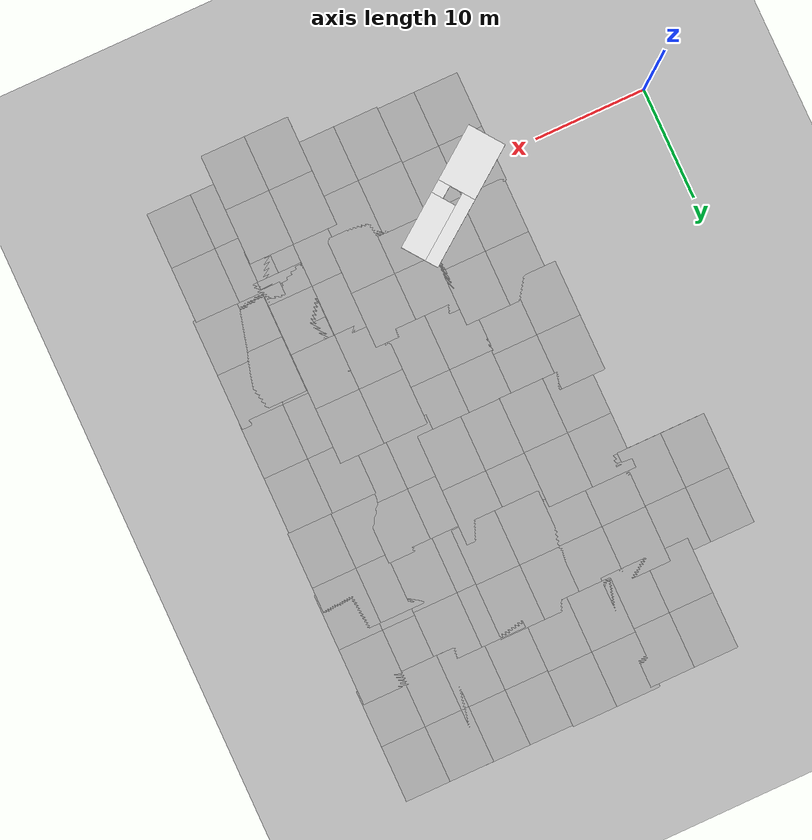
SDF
<sdf version="1.5">
 <world name="default">
  <model name="ground_plane">
   <static>1</static>
   <link name="link">
    <collision name="collision">
     <geometry><plane><normal>0 0 1</normal><size>100 100</size></plane></geometry>
     <surface><friction><ode><mu>100</mu><mu2>50</mu2></ode></friction></surface>
    </collision>
    <visual name="visual">
     <cast_shadows>0</cast_shadows>
     <geometry><plane><normal>0 0 1</normal><size>100 100</size></plane></geometry>
     <material>
      <script><uri>file://media/materials/scripts/gazebo.material</uri><name>Gazebo/Grey</name></script>
     </material>
    </visual>
   </link>
  </model>
  <model name="mud_box_20">
   <static>1</static>
   <link name="link">
    <collision name="collision"><geometry><box><size>8 10 0.2</size></box></geometry></collision>
    <visual name="visual_1">
     <pose>-2 2.5 0 0 -0 0</pose>
     <cast_shadows>0</cast_shadows>
     <geometry><box><size>4 5 0.2</size></box></geometry>
     <material>
      <script>
       <uri>model://mud_box/materials/scripts</uri>
       <uri>model://mud_box/materials/textures</uri>
       <name>vrc/mud</name>
      </script>
     </material>
    </visual>
    <visual name="visual_2">
     <pose>2 2.5 0 0 -0 0</pose>
     <cast_shadows>0</cast_shadows>
     <geometry><box><size>4 5 0.2</size></box></geometry>
     <material>
      <script>
       <uri>model://mud_box/materials/scripts</uri>
       <uri>model://mud_box/materials/textures</uri>
       <name>vrc/mud</name>
      </script>
     </material>
    </visual>
    <visual name="visual_3">
     <pose>2 -2.5 0 0 -0 0</pose>
     <cast_shadows>0</cast_shadows>
     <geometry><box><size>4 5 0.2</size></box></geometry>
     <material>
      <script>
       <uri>model://mud_box/materials/scripts</uri>
       <uri>model://mud_box/materials/textures</uri>
       <name>vrc/mud</name>
      </script>
     </material>
    </visual>
    <visual name="visual_4">
     <pose>-2 -2.5 0 0 -0 0</pose>
     <cast_shadows>0</cast_shadows>
     <geometry><box><size>4 5 0.2</size></box></geometry>
     <material>
      <script>
       <uri>model://mud_box/materials/scripts</uri>
       <uri>model://mud_box/materials/textures</uri>
       <name>vrc/mud</name>
      </script>
     </material>
    </visual>
   </link>
   <pose>17.6784 -2.87806 0 0 -0 0</pose>
  </model>
  <model name="mud_box_21">
   <static>1</static>
   <link name="link">
    <collision name="collision"><geometry><box><size>8 10 0.2</size></box></geometry></collision>
    <visual name="visual_1">
     <pose>-2 2.5 0 0 -0 0</pose>
     <cast_shadows>0</cast_shadows>
     <geometry><box><size>4 5 0.2</size></box></geometry>
     <material>
      <script>
       <uri>model://mud_box/materials/scripts</uri>
       <uri>model://mud_box/materials/textures</uri>
       <name>vrc/mud</name>
      </script>
     </material>
    </visual>
    <visual name="visual_2">
     <pose>2 2.5 0 0 -0 0</pose>
     <cast_shadows>0</cast_shadows>
     <geometry><box><size>4 5 0.2</size></box></geometry>
     <material>
      <script>
       <uri>model://mud_box/materials/scripts</uri>
       <uri>model://mud_box/materials/textures</uri>
       <name>vrc/mud</name>
      </script>
     </material>
    </visual>
    <visual name="visual_3">
     <pose>2 -2.5 0 0 -0 0</pose>
     <cast_shadows>0</cast_shadows>
     <geometry><box><size>4 5 0.2</size></box></geometry>
     <material>
      <script>
       <uri>model://mud_box/materials/scripts</uri>
       <uri>model://mud_box/materials/textures</uri>
       <name>vrc/mud</name>
      </script>
     </material>
    </visual>
    <visual name="visual_4">
     <pose>-2 -2.5 0 0 -0 0</pose>
     <cast_shadows>0</cast_shadows>
     <geometry><box><size>4 5 0.2</size></box></geometry>
     <material>
      <script>
       <uri>model://mud_box/materials/scripts</uri>
       <uri>model://mud_box/materials/textures</uri>
       <name>vrc/mud</name>
      </script>
     </material>
    </visual>
   </link>
   <pose>17.8105 6.82073 0 0 -0 0</pose>
  </model>
  <model name="mud_box_22">
   <static>1</static>
   <link name="link">
    <collision name="collision"><geometry><box><size>8 10 0.2</size></box></geometry></collision>
    <visual name="visual_1">
     <pose>-2 2.5 0 0 -0 0</pose>
     <cast_shadows>0</cast_shadows>
     <geometry><box><size>4 5 0.2</size></box></geometry>
     <material>
      <script>
       <uri>model://mud_box/materials/scripts</uri>
       <uri>model://mud_box/materials/textures</uri>
       <name>vrc/mud</name>
      </script>
     </material>
    </visual>
    <visual name="visual_2">
     <pose>2 2.5 0 0 -0 0</pose>
     <cast_shadows>0</cast_shadows>
     <geometry><box><size>4 5 0.2</size></box></geometry>
     <material>
      <script>
       <uri>model://mud_box/materials/scripts</uri>
       <uri>model://mud_box/materials/textures</uri>
       <name>vrc/mud</name>
      </script>
     </material>
    </visual>
    <visual name="visual_3">
     <pose>2 -2.5 0 0 -0 0</pose>
     <cast_shadows>0</cast_shadows>
     <geometry><box><size>4 5 0.2</size></box></geometry>
     <material>
      <script>
       <uri>model://mud_box/materials/scripts</uri>
       <uri>model://mud_box/materials/textures</uri>
       <name>vrc/mud</name>
      </script>
     </material>
    </visual>
    <visual name="visual_4">
     <pose>-2 -2.5 0 0 -0 0</pose>
     <cast_shadows>0</cast_shadows>
     <geometry><box><size>4 5 0.2</size></box></geometry>
     <material>
      <script>
       <uri>model://mud_box/materials/scripts</uri>
       <uri>model://mud_box/materials/textures</uri>
       <name>vrc/mud</name>
      </script>
     </material>
    </visual>
   </link>
   <pose>16.8214 15.0075 0 0 -0 0</pose>
  </model>
  <model name="mud_box_28">
   <static>1</static>
   <link name="link">
    <collision name="collision"><geometry><box><size>8 10 0.2</size></box></geometry></collision>
    <visual name="visual_1">
     <pose>-2 2.5 0 0 -0 0</pose>
     <cast_shadows>0</cast_shadows>
     <geometry><box><size>4 5 0.2</size></box></geometry>
     <material>
      <script>
       <uri>model://mud_box/materials/scripts</uri>
       <uri>model://mud_box/materials/textures</uri>
       <name>vrc/mud</name>
      </script>
     </material>
    </visual>
    <visual name="visual_2">
     <pose>2 2.5 0 0 -0 0</pose>
     <cast_shadows>0</cast_shadows>
     <geometry><box><size>4 5 0.2</size></box></geometry>
     <material>
      <script>
       <uri>model://mud_box/materials/scripts</uri>
       <uri>model://mud_box/materials/textures</uri>
       <name>vrc/mud</name>
      </script>
     </material>
    </visual>
    <visual name="visual_3">
     <pose>2 -2.5 0 0 -0 0</pose>
     <cast_shadows>0</cast_shadows>
     <geometry><box><size>4 5 0.2</size></box></geometry>
     <material>
      <script>
       <uri>model://mud_box/materials/scripts</uri>
       <uri>model://mud_box/materials/textures</uri>
       <name>vrc/mud</name>
      </script>
     </material>
    </visual>
    <visual name="visual_4">
     <pose>-2 -2.5 0 0 -0 0</pose>
     <cast_shadows>0</cast_shadows>
     <geometry><box><size>4 5 0.2</size></box></geometry>
     <material>
      <script>
       <uri>model://mud_box/materials/scripts</uri>
       <uri>model://mud_box/materials/textures</uri>
       <name>vrc/mud</name>
      </script>
     </material>
    </visual>
   </link>
   <pose>17.9076 23.5387 0 0 -0 0</pose>
  </model>
  <model name="mud_box_29">
   <static>1</static>
   <link name="link">
    <collision name="collision"><geometry><box><size>8 10 0.2</size></box></geometry></collision>
    <visual name="visual_1">
     <pose>-2 2.5 0 0 -0 0</pose>
     <cast_shadows>0</cast_shadows>
     <geometry><box><size>4 5 0.2</size></box></geometry>
     <material>
      <script>
       <uri>model://mud_box/materials/scripts</uri>
       <uri>model://mud_box/materials/textures</uri>
       <name>vrc/mud</name>
      </script>
     </material>
    </visual>
    <visual name="visual_2">
     <pose>2 2.5 0 0 -0 0</pose>
     <cast_shadows>0</cast_shadows>
     <geometry><box><size>4 5 0.2</size></box></geometry>
     <material>
      <script>
       <uri>model://mud_box/materials/scripts</uri>
       <uri>model://mud_box/materials/textures</uri>
       <name>vrc/mud</name>
      </script>
     </material>
    </visual>
    <visual name="visual_3">
     <pose>2 -2.5 0 0 -0 0</pose>
     <cast_shadows>0</cast_shadows>
     <geometry><box><size>4 5 0.2</size></box></geometry>
     <material>
      <script>
       <uri>model://mud_box/materials/scripts</uri>
       <uri>model://mud_box/materials/textures</uri>
       <name>vrc/mud</name>
      </script>
     </material>
    </visual>
    <visual name="visual_4">
     <pose>-2 -2.5 0 0 -0 0</pose>
     <cast_shadows>0</cast_shadows>
     <geometry><box><size>4 5 0.2</size></box></geometry>
     <material>
      <script>
       <uri>model://mud_box/materials/scripts</uri>
       <uri>model://mud_box/materials/textures</uri>
       <name>vrc/mud</name>
      </script>
     </material>
    </visual>
   </link>
   <pose>25.4664 23.5733 0 0 -0 0</pose>
  </model>
  <model name="mud_box_30">
   <static>1</static>
   <link name="link">
    <collision name="collision"><geometry><box><size>8 10 0.2</size></box></geometry></collision>
    <visual name="visual_1">
     <pose>-2 2.5 0 0 -0 0</pose>
     <cast_shadows>0</cast_shadows>
     <geometry><box><size>4 5 0.2</size></box></geometry>
     <material>
      <script>
       <uri>model://mud_box/materials/scripts</uri>
       <uri>model://mud_box/materials/textures</uri>
       <name>vrc/mud</name>
      </script>
     </material>
    </visual>
    <visual name="visual_2">
     <pose>2 2.5 0 0 -0 0</pose>
     <cast_shadows>0</cast_shadows>
     <geometry><box><size>4 5 0.2</size></box></geometry>
     <material>
      <script>
       <uri>model://mud_box/materials/scripts</uri>
       <uri>model://mud_box/materials/textures</uri>
       <name>vrc/mud</name>
      </script>
     </material>
    </visual>
    <visual name="visual_3">
     <pose>2 -2.5 0 0 -0 0</pose>
     <cast_shadows>0</cast_shadows>
     <geometry><box><size>4 5 0.2</size></box></geometry>
     <material>
      <script>
       <uri>model://mud_box/materials/scripts</uri>
       <uri>model://mud_box/materials/textures</uri>
       <name>vrc/mud</name>
      </script>
     </material>
    </visual>
    <visual name="visual_4">
     <pose>-2 -2.5 0 0 -0 0</pose>
     <cast_shadows>0</cast_shadows>
     <geometry><box><size>4 5 0.2</size></box></geometry>
     <material>
      <script>
       <uri>model://mud_box/materials/scripts</uri>
       <uri>model://mud_box/materials/textures</uri>
       <name>vrc/mud</name>
      </script>
     </material>
    </visual>
   </link>
   <pose>24.6825 14.6232 0 0 -0 0</pose>
  </model>
  <model name="mud_box_31">
   <static>1</static>
   <link name="link">
    <collision name="collision"><geometry><box><size>8 10 0.2</size></box></geometry></collision>
    <visual name="visual_1">
     <pose>-2 2.5 0 0 -0 0</pose>
     <cast_shadows>0</cast_shadows>
     <geometry><box><size>4 5 0.2</size></box></geometry>
     <material>
      <script>
       <uri>model://mud_box/materials/scripts</uri>
       <uri>model://mud_box/materials/textures</uri>
       <name>vrc/mud</name>
      </script>
     </material>
    </visual>
    <visual name="visual_2">
     <pose>2 2.5 0 0 -0 0</pose>
     <cast_shadows>0</cast_shadows>
     <geometry><box><size>4 5 0.2</size></box></geometry>
     <material>
      <script>
       <uri>model://mud_box/materials/scripts</uri>
       <uri>model://mud_box/materials/textures</uri>
       <name>vrc/mud</name>
      </script>
     </material>
    </visual>
    <visual name="visual_3">
     <pose>2 -2.5 0 0 -0 0</pose>
     <cast_shadows>0</cast_shadows>
     <geometry><box><size>4 5 0.2</size></box></geometry>
     <material>
      <script>
       <uri>model://mud_box/materials/scripts</uri>
       <uri>model://mud_box/materials/textures</uri>
       <name>vrc/mud</name>
      </script>
     </material>
    </visual>
    <visual name="visual_4">
     <pose>-2 -2.5 0 0 -0 0</pose>
     <cast_shadows>0</cast_shadows>
     <geometry><box><size>4 5 0.2</size></box></geometry>
     <material>
      <script>
       <uri>model://mud_box/materials/scripts</uri>
       <uri>model://mud_box/materials/textures</uri>
       <name>vrc/mud</name>
      </script>
     </material>
    </visual>
   </link>
   <pose>25.5048 5.37168 0 0 -0 0</pose>
  </model>
  <model name="mud_box_32">
   <static>1</static>
   <link name="link">
    <collision name="collision"><geometry><box><size>8 10 0.2</size></box></geometry></collision>
    <visual name="visual_1">
     <pose>-2 2.5 0 0 -0 0</pose>
     <cast_shadows>0</cast_shadows>
     <geometry><box><size>4 5 0.2</size></box></geometry>
     <material>
      <script>
       <uri>model://mud_box/materials/scripts</uri>
       <uri>model://mud_box/materials/textures</uri>
       <name>vrc/mud</name>
      </script>
     </material>
    </visual>
    <visual name="visual_2">
     <pose>2 2.5 0 0 -0 0</pose>
     <cast_shadows>0</cast_shadows>
     <geometry><box><size>4 5 0.2</size></box></geometry>
     <material>
      <script>
       <uri>model://mud_box/materials/scripts</uri>
       <uri>model://mud_box/materials/textures</uri>
       <name>vrc/mud</name>
      </script>
     </material>
    </visual>
    <visual name="visual_3">
     <pose>2 -2.5 0 0 -0 0</pose>
     <cast_shadows>0</cast_shadows>
     <geometry><box><size>4 5 0.2</size></box></geometry>
     <material>
      <script>
       <uri>model://mud_box/materials/scripts</uri>
       <uri>model://mud_box/materials/textures</uri>
       <name>vrc/mud</name>
      </script>
     </material>
    </visual>
    <visual name="visual_4">
     <pose>-2 -2.5 0 0 -0 0</pose>
     <cast_shadows>0</cast_shadows>
     <geometry><box><size>4 5 0.2</size></box></geometry>
     <material>
      <script>
       <uri>model://mud_box/materials/scripts</uri>
       <uri>model://mud_box/materials/textures</uri>
       <name>vrc/mud</name>
      </script>
     </material>
    </visual>
   </link>
   <pose>25.024 -3.03907 0 0 -0 0</pose>
  </model>
  <model name="mud_box_60">
   <static>1</static>
   <link name="link">
    <collision name="collision"><geometry><box><size>8 10 0.2</size></box></geometry></collision>
    <visual name="visual_1">
     <pose>-2 2.5 0 0 -0 0</pose>
     <cast_shadows>0</cast_shadows>
     <geometry><box><size>4 5 0.2</size></box></geometry>
     <material>
      <script>
       <uri>model://mud_box/materials/scripts</uri>
       <uri>model://mud_box/materials/textures</uri>
       <name>vrc/mud</name>
      </script>
     </material>
    </visual>
    <visual name="visual_2">
     <pose>2 2.5 0 0 -0 0</pose>
     <cast_shadows>0</cast_shadows>
     <geometry><box><size>4 5 0.2</size></box></geometry>
     <material>
      <script>
       <uri>model://mud_box/materials/scripts</uri>
       <uri>model://mud_box/materials/textures</uri>
       <name>vrc/mud</name>
      </script>
     </material>
    </visual>
    <visual name="visual_3">
     <pose>2 -2.5 0 0 -0 0</pose>
     <cast_shadows>0</cast_shadows>
     <geometry><box><size>4 5 0.2</size></box></geometry>
     <material>
      <script>
       <uri>model://mud_box/materials/scripts</uri>
       <uri>model://mud_box/materials/textures</uri>
       <name>vrc/mud</name>
      </script>
     </material>
    </visual>
    <visual name="visual_4">
     <pose>-2 -2.5 0 0 -0 0</pose>
     <cast_shadows>0</cast_shadows>
     <geometry><box><size>4 5 0.2</size></box></geometry>
     <material>
      <script>
       <uri>model://mud_box/materials/scripts</uri>
       <uri>model://mud_box/materials/textures</uri>
       <name>vrc/mud</name>
      </script>
     </material>
    </visual>
   </link>
   <pose>10.8531 31.8079 0 0 -0 0</pose>
  </model>
  <model name="mud_box_61">
   <static>1</static>
   <link name="link">
    <collision name="collision"><geometry><box><size>8 10 0.2</size></box></geometry></collision>
    <visual name="visual_1">
     <pose>-2 2.5 0 0 -0 0</pose>
     <cast_shadows>0</cast_shadows>
     <geometry><box><size>4 5 0.2</size></box></geometry>
     <material>
      <script>
       <uri>model://mud_box/materials/scripts</uri>
       <uri>model://mud_box/materials/textures</uri>
       <name>vrc/mud</name>
      </script>
     </material>
    </visual>
    <visual name="visual_2">
     <pose>2 2.5 0 0 -0 0</pose>
     <cast_shadows>0</cast_shadows>
     <geometry><box><size>4 5 0.2</size></box></geometry>
     <material>
      <script>
       <uri>model://mud_box/materials/scripts</uri>
       <uri>model://mud_box/materials/textures</uri>
       <name>vrc/mud</name>
      </script>
     </material>
    </visual>
    <visual name="visual_3">
     <pose>2 -2.5 0 0 -0 0</pose>
     <cast_shadows>0</cast_shadows>
     <geometry><box><size>4 5 0.2</size></box></geometry>
     <material>
      <script>
       <uri>model://mud_box/materials/scripts</uri>
       <uri>model://mud_box/materials/textures</uri>
       <name>vrc/mud</name>
      </script>
     </material>
    </visual>
    <visual name="visual_4">
     <pose>-2 -2.5 0 0 -0 0</pose>
     <cast_shadows>0</cast_shadows>
     <geometry><box><size>4 5 0.2</size></box></geometry>
     <material>
      <script>
       <uri>model://mud_box/materials/scripts</uri>
       <uri>model://mud_box/materials/textures</uri>
       <name>vrc/mud</name>
      </script>
     </material>
    </visual>
   </link>
   <pose>18.5742 31.8561 0 0 -0 0</pose>
  </model>
  <model name="mud_box_62">
   <static>1</static>
   <link name="link">
    <collision name="collision"><geometry><box><size>8 10 0.2</size></box></geometry></collision>
    <visual name="visual_1">
     <pose>-2 2.5 0 0 -0 0</pose>
     <cast_shadows>0</cast_shadows>
     <geometry><box><size>4 5 0.2</size></box></geometry>
     <material>
      <script>
       <uri>model://mud_box/materials/scripts</uri>
       <uri>model://mud_box/materials/textures</uri>
       <name>vrc/mud</name>
      </script>
     </material>
    </visual>
    <visual name="visual_2">
     <pose>2 2.5 0 0 -0 0</pose>
     <cast_shadows>0</cast_shadows>
     <geometry><box><size>4 5 0.2</size></box></geometry>
     <material>
      <script>
       <uri>model://mud_box/materials/scripts</uri>
       <uri>model://mud_box/materials/textures</uri>
       <name>vrc/mud</name>
      </script>
     </material>
    </visual>
    <visual name="visual_3">
     <pose>2 -2.5 0 0 -0 0</pose>
     <cast_shadows>0</cast_shadows>
     <geometry><box><size>4 5 0.2</size></box></geometry>
     <material>
      <script>
       <uri>model://mud_box/materials/scripts</uri>
       <uri>model://mud_box/materials/textures</uri>
       <name>vrc/mud</name>
      </script>
     </material>
    </visual>
    <visual name="visual_4">
     <pose>-2 -2.5 0 0 -0 0</pose>
     <cast_shadows>0</cast_shadows>
     <geometry><box><size>4 5 0.2</size></box></geometry>
     <material>
      <script>
       <uri>model://mud_box/materials/scripts</uri>
       <uri>model://mud_box/materials/textures</uri>
       <name>vrc/mud</name>
      </script>
     </material>
    </visual>
   </link>
   <pose>26.1645 31.9077 0 0 -0 0</pose>
  </model>
  <model name="mud_box_63">
   <static>1</static>
   <link name="link">
    <collision name="collision"><geometry><box><size>8 10 0.2</size></box></geometry></collision>
    <visual name="visual_1">
     <pose>-2 2.5 0 0 -0 0</pose>
     <cast_shadows>0</cast_shadows>
     <geometry><box><size>4 5 0.2</size></box></geometry>
     <material>
      <script>
       <uri>model://mud_box/materials/scripts</uri>
       <uri>model://mud_box/materials/textures</uri>
       <name>vrc/mud</name>
      </script>
     </material>
    </visual>
    <visual name="visual_2">
     <pose>2 2.5 0 0 -0 0</pose>
     <cast_shadows>0</cast_shadows>
     <geometry><box><size>4 5 0.2</size></box></geometry>
     <material>
      <script>
       <uri>model://mud_box/materials/scripts</uri>
       <uri>model://mud_box/materials/textures</uri>
       <name>vrc/mud</name>
      </script>
     </material>
    </visual>
    <visual name="visual_3">
     <pose>2 -2.5 0 0 -0 0</pose>
     <cast_shadows>0</cast_shadows>
     <geometry><box><size>4 5 0.2</size></box></geometry>
     <material>
      <script>
       <uri>model://mud_box/materials/scripts</uri>
       <uri>model://mud_box/materials/textures</uri>
       <name>vrc/mud</name>
      </script>
     </material>
    </visual>
    <visual name="visual_4">
     <pose>-2 -2.5 0 0 -0 0</pose>
     <cast_shadows>0</cast_shadows>
     <geometry><box><size>4 5 0.2</size></box></geometry>
     <material>
      <script>
       <uri>model://mud_box/materials/scripts</uri>
       <uri>model://mud_box/materials/textures</uri>
       <name>vrc/mud</name>
      </script>
     </material>
    </visual>
   </link>
   <pose>31.8855 31.8213 0 0 -0 0</pose>
  </model>
  <model name="mud_box_64">
   <static>1</static>
   <link name="link">
    <collision name="collision"><geometry><box><size>8 10 0.2</size></box></geometry></collision>
    <visual name="visual_1">
     <pose>-2 2.5 0 0 -0 0</pose>
     <cast_shadows>0</cast_shadows>
     <geometry><box><size>4 5 0.2</size></box></geometry>
     <material>
      <script>
       <uri>model://mud_box/materials/scripts</uri>
       <uri>model://mud_box/materials/textures</uri>
       <name>vrc/mud</name>
      </script>
     </material>
    </visual>
    <visual name="visual_2">
     <pose>2 2.5 0 0 -0 0</pose>
     <cast_shadows>0</cast_shadows>
     <geometry><box><size>4 5 0.2</size></box></geometry>
     <material>
      <script>
       <uri>model://mud_box/materials/scripts</uri>
       <uri>model://mud_box/materials/textures</uri>
       <name>vrc/mud</name>
      </script>
     </material>
    </visual>
    <visual name="visual_3">
     <pose>2 -2.5 0 0 -0 0</pose>
     <cast_shadows>0</cast_shadows>
     <geometry><box><size>4 5 0.2</size></box></geometry>
     <material>
      <script>
       <uri>model://mud_box/materials/scripts</uri>
       <uri>model://mud_box/materials/textures</uri>
       <name>vrc/mud</name>
      </script>
     </material>
    </visual>
    <visual name="visual_4">
     <pose>-2 -2.5 0 0 -0 0</pose>
     <cast_shadows>0</cast_shadows>
     <geometry><box><size>4 5 0.2</size></box></geometry>
     <material>
      <script>
       <uri>model://mud_box/materials/scripts</uri>
       <uri>model://mud_box/materials/textures</uri>
       <name>vrc/mud</name>
      </script>
     </material>
    </visual>
   </link>
   <pose>32.0376 22.235 0 0 -0 0</pose>
  </model>
  <model name="mud_box_65">
   <static>1</static>
   <link name="link">
    <collision name="collision"><geometry><box><size>8 10 0.2</size></box></geometry></collision>
    <visual name="visual_1">
     <pose>-2 2.5 0 0 -0 0</pose>
     <cast_shadows>0</cast_shadows>
     <geometry><box><size>4 5 0.2</size></box></geometry>
     <material>
      <script>
       <uri>model://mud_box/materials/scripts</uri>
       <uri>model://mud_box/materials/textures</uri>
       <name>vrc/mud</name>
      </script>
     </material>
    </visual>
    <visual name="visual_2">
     <pose>2 2.5 0 0 -0 0</pose>
     <cast_shadows>0</cast_shadows>
     <geometry><box><size>4 5 0.2</size></box></geometry>
     <material>
      <script>
       <uri>model://mud_box/materials/scripts</uri>
       <uri>model://mud_box/materials/textures</uri>
       <name>vrc/mud</name>
      </script>
     </material>
    </visual>
    <visual name="visual_3">
     <pose>2 -2.5 0 0 -0 0</pose>
     <cast_shadows>0</cast_shadows>
     <geometry><box><size>4 5 0.2</size></box></geometry>
     <material>
      <script>
       <uri>model://mud_box/materials/scripts</uri>
       <uri>model://mud_box/materials/textures</uri>
       <name>vrc/mud</name>
      </script>
     </material>
    </visual>
    <visual name="visual_4">
     <pose>-2 -2.5 0 0 -0 0</pose>
     <cast_shadows>0</cast_shadows>
     <geometry><box><size>4 5 0.2</size></box></geometry>
     <material>
      <script>
       <uri>model://mud_box/materials/scripts</uri>
       <uri>model://mud_box/materials/textures</uri>
       <name>vrc/mud</name>
      </script>
     </material>
    </visual>
   </link>
   <pose>32.2409 12.9553 0 0 -0 0</pose>
  </model>
  <model name="mud_box_66">
   <static>1</static>
   <link name="link">
    <collision name="collision"><geometry><box><size>8 10 0.2</size></box></geometry></collision>
    <visual name="visual_1">
     <pose>-2 2.5 0 0 -0 0</pose>
     <cast_shadows>0</cast_shadows>
     <geometry><box><size>4 5 0.2</size></box></geometry>
     <material>
      <script>
       <uri>model://mud_box/materials/scripts</uri>
       <uri>model://mud_box/materials/textures</uri>
       <name>vrc/mud</name>
      </script>
     </material>
    </visual>
    <visual name="visual_2">
     <pose>2 2.5 0 0 -0 0</pose>
     <cast_shadows>0</cast_shadows>
     <geometry><box><size>4 5 0.2</size></box></geometry>
     <material>
      <script>
       <uri>model://mud_box/materials/scripts</uri>
       <uri>model://mud_box/materials/textures</uri>
       <name>vrc/mud</name>
      </script>
     </material>
    </visual>
    <visual name="visual_3">
     <pose>2 -2.5 0 0 -0 0</pose>
     <cast_shadows>0</cast_shadows>
     <geometry><box><size>4 5 0.2</size></box></geometry>
     <material>
      <script>
       <uri>model://mud_box/materials/scripts</uri>
       <uri>model://mud_box/materials/textures</uri>
       <name>vrc/mud</name>
      </script>
     </material>
    </visual>
    <visual name="visual_4">
     <pose>-2 -2.5 0 0 -0 0</pose>
     <cast_shadows>0</cast_shadows>
     <geometry><box><size>4 5 0.2</size></box></geometry>
     <material>
      <script>
       <uri>model://mud_box/materials/scripts</uri>
       <uri>model://mud_box/materials/textures</uri>
       <name>vrc/mud</name>
      </script>
     </material>
    </visual>
   </link>
   <pose>32.2475 3.439 0 0 -0 0</pose>
  </model>
  <model name="mud_box_67">
   <static>1</static>
   <link name="link">
    <collision name="collision"><geometry><box><size>8 10 0.2</size></box></geometry></collision>
    <visual name="visual_1">
     <pose>-2 2.5 0 0 -0 0</pose>
     <cast_shadows>0</cast_shadows>
     <geometry><box><size>4 5 0.2</size></box></geometry>
     <material>
      <script>
       <uri>model://mud_box/materials/scripts</uri>
       <uri>model://mud_box/materials/textures</uri>
       <name>vrc/mud</name>
      </script>
     </material>
    </visual>
    <visual name="visual_2">
     <pose>2 2.5 0 0 -0 0</pose>
     <cast_shadows>0</cast_shadows>
     <geometry><box><size>4 5 0.2</size></box></geometry>
     <material>
      <script>
       <uri>model://mud_box/materials/scripts</uri>
       <uri>model://mud_box/materials/textures</uri>
       <name>vrc/mud</name>
      </script>
     </material>
    </visual>
    <visual name="visual_3">
     <pose>2 -2.5 0 0 -0 0</pose>
     <cast_shadows>0</cast_shadows>
     <geometry><box><size>4 5 0.2</size></box></geometry>
     <material>
      <script>
       <uri>model://mud_box/materials/scripts</uri>
       <uri>model://mud_box/materials/textures</uri>
       <name>vrc/mud</name>
      </script>
     </material>
    </visual>
    <visual name="visual_4">
     <pose>-2 -2.5 0 0 -0 0</pose>
     <cast_shadows>0</cast_shadows>
     <geometry><box><size>4 5 0.2</size></box></geometry>
     <material>
      <script>
       <uri>model://mud_box/materials/scripts</uri>
       <uri>model://mud_box/materials/textures</uri>
       <name>vrc/mud</name>
      </script>
     </material>
    </visual>
   </link>
   <pose>32.1972 -5.4097 0 0 -0 0</pose>
  </model>
  <model name="mud_box_84">
   <static>1</static>
   <link name="link">
    <collision name="collision"><geometry><box><size>8 10 0.2</size></box></geometry></collision>
    <visual name="visual_1">
     <pose>-2 2.5 0 0 -0 0</pose>
     <cast_shadows>0</cast_shadows>
     <geometry><box><size>4 5 0.2</size></box></geometry>
     <material>
      <script>
       <uri>model://mud_box/materials/scripts</uri>
       <uri>model://mud_box/materials/textures</uri>
       <name>vrc/mud</name>
      </script>
     </material>
    </visual>
    <visual name="visual_2">
     <pose>2 2.5 0 0 -0 0</pose>
     <cast_shadows>0</cast_shadows>
     <geometry><box><size>4 5 0.2</size></box></geometry>
     <material>
      <script>
       <uri>model://mud_box/materials/scripts</uri>
       <uri>model://mud_box/materials/textures</uri>
       <name>vrc/mud</name>
      </script>
     </material>
    </visual>
    <visual name="visual_3">
     <pose>2 -2.5 0 0 -0 0</pose>
     <cast_shadows>0</cast_shadows>
     <geometry><box><size>4 5 0.2</size></box></geometry>
     <material>
      <script>
       <uri>model://mud_box/materials/scripts</uri>
       <uri>model://mud_box/materials/textures</uri>
       <name>vrc/mud</name>
      </script>
     </material>
    </visual>
    <visual name="visual_4">
     <pose>-2 -2.5 0 0 -0 0</pose>
     <cast_shadows>0</cast_shadows>
     <geometry><box><size>4 5 0.2</size></box></geometry>
     <material>
      <script>
       <uri>model://mud_box/materials/scripts</uri>
       <uri>model://mud_box/materials/textures</uri>
       <name>vrc/mud</name>
      </script>
     </material>
    </visual>
   </link>
   <pose>38.3426 -2.83089 0 0 -0 0</pose>
  </model>
  <model name="mud_box_85">
   <static>1</static>
   <link name="link">
    <collision name="collision"><geometry><box><size>8 10 0.2</size></box></geometry></collision>
    <visual name="visual_1">
     <pose>-2 2.5 0 0 -0 0</pose>
     <cast_shadows>0</cast_shadows>
     <geometry><box><size>4 5 0.2</size></box></geometry>
     <material>
      <script>
       <uri>model://mud_box/materials/scripts</uri>
       <uri>model://mud_box/materials/textures</uri>
       <name>vrc/mud</name>
      </script>
     </material>
    </visual>
    <visual name="visual_2">
     <pose>2 2.5 0 0 -0 0</pose>
     <cast_shadows>0</cast_shadows>
     <geometry><box><size>4 5 0.2</size></box></geometry>
     <material>
      <script>
       <uri>model://mud_box/materials/scripts</uri>
       <uri>model://mud_box/materials/textures</uri>
       <name>vrc/mud</name>
      </script>
     </material>
    </visual>
    <visual name="visual_3">
     <pose>2 -2.5 0 0 -0 0</pose>
     <cast_shadows>0</cast_shadows>
     <geometry><box><size>4 5 0.2</size></box></geometry>
     <material>
      <script>
       <uri>model://mud_box/materials/scripts</uri>
       <uri>model://mud_box/materials/textures</uri>
       <name>vrc/mud</name>
      </script>
     </material>
    </visual>
    <visual name="visual_4">
     <pose>-2 -2.5 0 0 -0 0</pose>
     <cast_shadows>0</cast_shadows>
     <geometry><box><size>4 5 0.2</size></box></geometry>
     <material>
      <script>
       <uri>model://mud_box/materials/scripts</uri>
       <uri>model://mud_box/materials/textures</uri>
       <name>vrc/mud</name>
      </script>
     </material>
    </visual>
   </link>
   <pose>38.5571 6.9665 0 0 -0 0</pose>
  </model>
  <model name="mud_box_86">
   <static>1</static>
   <link name="link">
    <collision name="collision"><geometry><box><size>8 10 0.2</size></box></geometry></collision>
    <visual name="visual_1">
     <pose>-2 2.5 0 0 -0 0</pose>
     <cast_shadows>0</cast_shadows>
     <geometry><box><size>4 5 0.2</size></box></geometry>
     <material>
      <script>
       <uri>model://mud_box/materials/scripts</uri>
       <uri>model://mud_box/materials/textures</uri>
       <name>vrc/mud</name>
      </script>
     </material>
    </visual>
    <visual name="visual_2">
     <pose>2 2.5 0 0 -0 0</pose>
     <cast_shadows>0</cast_shadows>
     <geometry><box><size>4 5 0.2</size></box></geometry>
     <material>
      <script>
       <uri>model://mud_box/materials/scripts</uri>
       <uri>model://mud_box/materials/textures</uri>
       <name>vrc/mud</name>
      </script>
     </material>
    </visual>
    <visual name="visual_3">
     <pose>2 -2.5 0 0 -0 0</pose>
     <cast_shadows>0</cast_shadows>
     <geometry><box><size>4 5 0.2</size></box></geometry>
     <material>
      <script>
       <uri>model://mud_box/materials/scripts</uri>
       <uri>model://mud_box/materials/textures</uri>
       <name>vrc/mud</name>
      </script>
     </material>
    </visual>
    <visual name="visual_4">
     <pose>-2 -2.5 0 0 -0 0</pose>
     <cast_shadows>0</cast_shadows>
     <geometry><box><size>4 5 0.2</size></box></geometry>
     <material>
      <script>
       <uri>model://mud_box/materials/scripts</uri>
       <uri>model://mud_box/materials/textures</uri>
       <name>vrc/mud</name>
      </script>
     </material>
    </visual>
   </link>
   <pose>38.5888 16.4611 0 0 -0 0</pose>
  </model>
  <model name="mud_box_87">
   <static>1</static>
   <link name="link">
    <collision name="collision"><geometry><box><size>8 10 0.2</size></box></geometry></collision>
    <visual name="visual_1">
     <pose>-2 2.5 0 0 -0 0</pose>
     <cast_shadows>0</cast_shadows>
     <geometry><box><size>4 5 0.2</size></box></geometry>
     <material>
      <script>
       <uri>model://mud_box/materials/scripts</uri>
       <uri>model://mud_box/materials/textures</uri>
       <name>vrc/mud</name>
      </script>
     </material>
    </visual>
    <visual name="visual_2">
     <pose>2 2.5 0 0 -0 0</pose>
     <cast_shadows>0</cast_shadows>
     <geometry><box><size>4 5 0.2</size></box></geometry>
     <material>
      <script>
       <uri>model://mud_box/materials/scripts</uri>
       <uri>model://mud_box/materials/textures</uri>
       <name>vrc/mud</name>
      </script>
     </material>
    </visual>
    <visual name="visual_3">
     <pose>2 -2.5 0 0 -0 0</pose>
     <cast_shadows>0</cast_shadows>
     <geometry><box><size>4 5 0.2</size></box></geometry>
     <material>
      <script>
       <uri>model://mud_box/materials/scripts</uri>
       <uri>model://mud_box/materials/textures</uri>
       <name>vrc/mud</name>
      </script>
     </material>
    </visual>
    <visual name="visual_4">
     <pose>-2 -2.5 0 0 -0 0</pose>
     <cast_shadows>0</cast_shadows>
     <geometry><box><size>4 5 0.2</size></box></geometry>
     <material>
      <script>
       <uri>model://mud_box/materials/scripts</uri>
       <uri>model://mud_box/materials/textures</uri>
       <name>vrc/mud</name>
      </script>
     </material>
    </visual>
   </link>
   <pose>38.7106 26.4542 0 0 -0 0</pose>
  </model>
  <model name="mud_box_88">
   <static>1</static>
   <link name="link">
    <collision name="collision"><geometry><box><size>8 10 0.2</size></box></geometry></collision>
    <visual name="visual_1">
     <pose>-2 2.5 0 0 -0 0</pose>
     <cast_shadows>0</cast_shadows>
     <geometry><box><size>4 5 0.2</size></box></geometry>
     <material>
      <script>
       <uri>model://mud_box/materials/scripts</uri>
       <uri>model://mud_box/materials/textures</uri>
       <name>vrc/mud</name>
      </script>
     </material>
    </visual>
    <visual name="visual_2">
     <pose>2 2.5 0 0 -0 0</pose>
     <cast_shadows>0</cast_shadows>
     <geometry><box><size>4 5 0.2</size></box></geometry>
     <material>
      <script>
       <uri>model://mud_box/materials/scripts</uri>
       <uri>model://mud_box/materials/textures</uri>
       <name>vrc/mud</name>
      </script>
     </material>
    </visual>
    <visual name="visual_3">
     <pose>2 -2.5 0 0 -0 0</pose>
     <cast_shadows>0</cast_shadows>
     <geometry><box><size>4 5 0.2</size></box></geometry>
     <material>
      <script>
       <uri>model://mud_box/materials/scripts</uri>
       <uri>model://mud_box/materials/textures</uri>
       <name>vrc/mud</name>
      </script>
     </material>
    </visual>
    <visual name="visual_4">
     <pose>-2 -2.5 0 0 -0 0</pose>
     <cast_shadows>0</cast_shadows>
     <geometry><box><size>4 5 0.2</size></box></geometry>
     <material>
      <script>
       <uri>model://mud_box/materials/scripts</uri>
       <uri>model://mud_box/materials/textures</uri>
       <name>vrc/mud</name>
      </script>
     </material>
    </visual>
   </link>
   <pose>38.8311 32.0603 0 0 -0 0</pose>
  </model>
  <model name="mud_box_89">
   <static>1</static>
   <link name="link">
    <collision name="collision"><geometry><box><size>8 10 0.2</size></box></geometry></collision>
    <visual name="visual_1">
     <pose>-2 2.5 0 0 -0 0</pose>
     <cast_shadows>0</cast_shadows>
     <geometry><box><size>4 5 0.2</size></box></geometry>
     <material>
      <script>
       <uri>model://mud_box/materials/scripts</uri>
       <uri>model://mud_box/materials/textures</uri>
       <name>vrc/mud</name>
      </script>
     </material>
    </visual>
    <visual name="visual_2">
     <pose>2 2.5 0 0 -0 0</pose>
     <cast_shadows>0</cast_shadows>
     <geometry><box><size>4 5 0.2</size></box></geometry>
     <material>
      <script>
       <uri>model://mud_box/materials/scripts</uri>
       <uri>model://mud_box/materials/textures</uri>
       <name>vrc/mud</name>
      </script>
     </material>
    </visual>
    <visual name="visual_3">
     <pose>2 -2.5 0 0 -0 0</pose>
     <cast_shadows>0</cast_shadows>
     <geometry><box><size>4 5 0.2</size></box></geometry>
     <material>
      <script>
       <uri>model://mud_box/materials/scripts</uri>
       <uri>model://mud_box/materials/textures</uri>
       <name>vrc/mud</name>
      </script>
     </material>
    </visual>
    <visual name="visual_4">
     <pose>-2 -2.5 0 0 -0 0</pose>
     <cast_shadows>0</cast_shadows>
     <geometry><box><size>4 5 0.2</size></box></geometry>
     <material>
      <script>
       <uri>model://mud_box/materials/scripts</uri>
       <uri>model://mud_box/materials/textures</uri>
       <name>vrc/mud</name>
      </script>
     </material>
    </visual>
   </link>
   <pose>36.2873 6.23911 0 0 -0 0</pose>
  </model>
  <model name="mud_box_90">
   <static>1</static>
   <link name="link">
    <collision name="collision"><geometry><box><size>8 10 0.2</size></box></geometry></collision>
    <visual name="visual_1">
     <pose>-2 2.5 0 0 -0 0</pose>
     <cast_shadows>0</cast_shadows>
     <geometry><box><size>4 5 0.2</size></box></geometry>
     <material>
      <script>
       <uri>model://mud_box/materials/scripts</uri>
       <uri>model://mud_box/materials/textures</uri>
       <name>vrc/mud</name>
      </script>
     </material>
    </visual>
    <visual name="visual_2">
     <pose>2 2.5 0 0 -0 0</pose>
     <cast_shadows>0</cast_shadows>
     <geometry><box><size>4 5 0.2</size></box></geometry>
     <material>
      <script>
       <uri>model://mud_box/materials/scripts</uri>
       <uri>model://mud_box/materials/textures</uri>
       <name>vrc/mud</name>
      </script>
     </material>
    </visual>
    <visual name="visual_3">
     <pose>2 -2.5 0 0 -0 0</pose>
     <cast_shadows>0</cast_shadows>
     <geometry><box><size>4 5 0.2</size></box></geometry>
     <material>
      <script>
       <uri>model://mud_box/materials/scripts</uri>
       <uri>model://mud_box/materials/textures</uri>
       <name>vrc/mud</name>
      </script>
     </material>
    </visual>
    <visual name="visual_4">
     <pose>-2 -2.5 0 0 -0 0</pose>
     <cast_shadows>0</cast_shadows>
     <geometry><box><size>4 5 0.2</size></box></geometry>
     <material>
      <script>
       <uri>model://mud_box/materials/scripts</uri>
       <uri>model://mud_box/materials/textures</uri>
       <name>vrc/mud</name>
      </script>
     </material>
    </visual>
   </link>
   <pose>38.9467 40.8459 0 0 -0 0</pose>
  </model>
  <model name="mud_box_91">
   <static>1</static>
   <link name="link">
    <collision name="collision"><geometry><box><size>8 10 0.2</size></box></geometry></collision>
    <visual name="visual_1">
     <pose>-2 2.5 0 0 -0 0</pose>
     <cast_shadows>0</cast_shadows>
     <geometry><box><size>4 5 0.2</size></box></geometry>
     <material>
      <script>
       <uri>model://mud_box/materials/scripts</uri>
       <uri>model://mud_box/materials/textures</uri>
       <name>vrc/mud</name>
      </script>
     </material>
    </visual>
    <visual name="visual_2">
     <pose>2 2.5 0 0 -0 0</pose>
     <cast_shadows>0</cast_shadows>
     <geometry><box><size>4 5 0.2</size></box></geometry>
     <material>
      <script>
       <uri>model://mud_box/materials/scripts</uri>
       <uri>model://mud_box/materials/textures</uri>
       <name>vrc/mud</name>
      </script>
     </material>
    </visual>
    <visual name="visual_3">
     <pose>2 -2.5 0 0 -0 0</pose>
     <cast_shadows>0</cast_shadows>
     <geometry><box><size>4 5 0.2</size></box></geometry>
     <material>
      <script>
       <uri>model://mud_box/materials/scripts</uri>
       <uri>model://mud_box/materials/textures</uri>
       <name>vrc/mud</name>
      </script>
     </material>
    </visual>
    <visual name="visual_4">
     <pose>-2 -2.5 0 0 -0 0</pose>
     <cast_shadows>0</cast_shadows>
     <geometry><box><size>4 5 0.2</size></box></geometry>
     <material>
      <script>
       <uri>model://mud_box/materials/scripts</uri>
       <uri>model://mud_box/materials/textures</uri>
       <name>vrc/mud</name>
      </script>
     </material>
    </visual>
   </link>
   <pose>31.6128 40.8647 0 0 -0 0</pose>
  </model>
  <model name="mud_box_92">
   <static>1</static>
   <link name="link">
    <collision name="collision"><geometry><box><size>8 10 0.2</size></box></geometry></collision>
    <visual name="visual_1">
     <pose>-2 2.5 0 0 -0 0</pose>
     <cast_shadows>0</cast_shadows>
     <geometry><box><size>4 5 0.2</size></box></geometry>
     <material>
      <script>
       <uri>model://mud_box/materials/scripts</uri>
       <uri>model://mud_box/materials/textures</uri>
       <name>vrc/mud</name>
      </script>
     </material>
    </visual>
    <visual name="visual_2">
     <pose>2 2.5 0 0 -0 0</pose>
     <cast_shadows>0</cast_shadows>
     <geometry><box><size>4 5 0.2</size></box></geometry>
     <material>
      <script>
       <uri>model://mud_box/materials/scripts</uri>
       <uri>model://mud_box/materials/textures</uri>
       <name>vrc/mud</name>
      </script>
     </material>
    </visual>
    <visual name="visual_3">
     <pose>2 -2.5 0 0 -0 0</pose>
     <cast_shadows>0</cast_shadows>
     <geometry><box><size>4 5 0.2</size></box></geometry>
     <material>
      <script>
       <uri>model://mud_box/materials/scripts</uri>
       <uri>model://mud_box/materials/textures</uri>
       <name>vrc/mud</name>
      </script>
     </material>
    </visual>
    <visual name="visual_4">
     <pose>-2 -2.5 0 0 -0 0</pose>
     <cast_shadows>0</cast_shadows>
     <geometry><box><size>4 5 0.2</size></box></geometry>
     <material>
      <script>
       <uri>model://mud_box/materials/scripts</uri>
       <uri>model://mud_box/materials/textures</uri>
       <name>vrc/mud</name>
      </script>
     </material>
    </visual>
   </link>
   <pose>23.7232 40.9866 0 0 -0 0</pose>
  </model>
  <model name="mud_box_93">
   <static>1</static>
   <link name="link">
    <collision name="collision"><geometry><box><size>8 10 0.2</size></box></geometry></collision>
    <visual name="visual_1">
     <pose>-2 2.5 0 0 -0 0</pose>
     <cast_shadows>0</cast_shadows>
     <geometry><box><size>4 5 0.2</size></box></geometry>
     <material>
      <script>
       <uri>model://mud_box/materials/scripts</uri>
       <uri>model://mud_box/materials/textures</uri>
       <name>vrc/mud</name>
      </script>
     </material>
    </visual>
    <visual name="visual_2">
     <pose>2 2.5 0 0 -0 0</pose>
     <cast_shadows>0</cast_shadows>
     <geometry><box><size>4 5 0.2</size></box></geometry>
     <material>
      <script>
       <uri>model://mud_box/materials/scripts</uri>
       <uri>model://mud_box/materials/textures</uri>
       <name>vrc/mud</name>
      </script>
     </material>
    </visual>
    <visual name="visual_3">
     <pose>2 -2.5 0 0 -0 0</pose>
     <cast_shadows>0</cast_shadows>
     <geometry><box><size>4 5 0.2</size></box></geometry>
     <material>
      <script>
       <uri>model://mud_box/materials/scripts</uri>
       <uri>model://mud_box/materials/textures</uri>
       <name>vrc/mud</name>
      </script>
     </material>
    </visual>
    <visual name="visual_4">
     <pose>-2 -2.5 0 0 -0 0</pose>
     <cast_shadows>0</cast_shadows>
     <geometry><box><size>4 5 0.2</size></box></geometry>
     <material>
      <script>
       <uri>model://mud_box/materials/scripts</uri>
       <uri>model://mud_box/materials/textures</uri>
       <name>vrc/mud</name>
      </script>
     </material>
    </visual>
   </link>
   <pose>16.4749 40.7116 0 0 -0 0</pose>
  </model>
  <model name="window2_3">
   <pose>17.2845 2.91891 0.183995 1.54052 0.022505 0.63901</pose>
   <link name="Wall_0">
    <visual name="Wall_0_Visual_0">
     <pose>-3.2425 0 1.75 0 -0 0</pose>
     <geometry><box><size>5.265 0.15 3.5</size></box></geometry>
     <material>
      <script>
       <uri>model://window_door/materials/scripts</uri>
       <uri>model://window_door/materials/textures</uri>
       <name>Wall/NiceWall</name>
      </script>
      <ambient>1 1 1 1</ambient>
     </material>
    </visual>
    <collision name="Wall_0_Collision_0">
     <geometry><box><size>5.265 0.15 3.5</size></box></geometry>
     <pose>-3.2425 0 1.75 0 -0 0</pose>
    </collision>
    <visual name="Wall_0_Visual_1">
     <pose>2.6325 0 0.6 0 -0 0</pose>
     <geometry><box><size>6.485 0.15 1.2</size></box></geometry>
     <material>
      <script>
       <uri>model://window_door/materials/scripts</uri>
       <uri>model://window_door/materials/textures</uri>
       <name>Wall/NiceWall</name>
      </script>
      <ambient>1 1 1 1</ambient>
     </material>
    </visual>
    <collision name="Wall_0_Collision_1">
     <geometry><box><size>6.485 0.15 1.2</size></box></geometry>
     <pose>2.6325 0 0.6 0 -0 0</pose>
    </collision>
    <visual name="Wall_0_Visual_2">
     <pose>3.2325 0 2.35 0 -0 0</pose>
     <geometry><box><size>5.285 0.15 2.3</size></box></geometry>
     <material>
      <script>
       <uri>model://window_door/materials/scripts</uri>
       <uri>model://window_door/materials/textures</uri>
       <name>Wall/NiceWall</name>
      </script>
      <ambient>1 1 1 1</ambient>
     </material>
    </visual>
    <collision name="Wall_0_Collision_2">
     <geometry><box><size>5.285 0.15 2.3</size></box></geometry>
     <pose>3.2325 0 2.35 0 -0 0</pose>
    </collision>
    <visual name="Wall_0_Visual_3">
     <pose>-0.01 0 2.95 0 -0 0</pose>
     <geometry><box><size>1.2 0.15 1.1</size></box></geometry>
     <material>
      <script>
       <uri>model://window_door/materials/scripts</uri>
       <uri>model://window_door/materials/textures</uri>
       <name>Wall/NiceWall</name>
      </script>
      <ambient>1 1 1 1</ambient>
     </material>
    </visual>
    <collision name="Wall_0_Collision_3">
     <geometry><box><size>1.2 0.15 1.1</size></box></geometry>
     <pose>-0.01 0 2.95 0 -0 0</pose>
    </collision>
   </link>
   <static>1</static>
  </model>
 </world>
</sdf>
